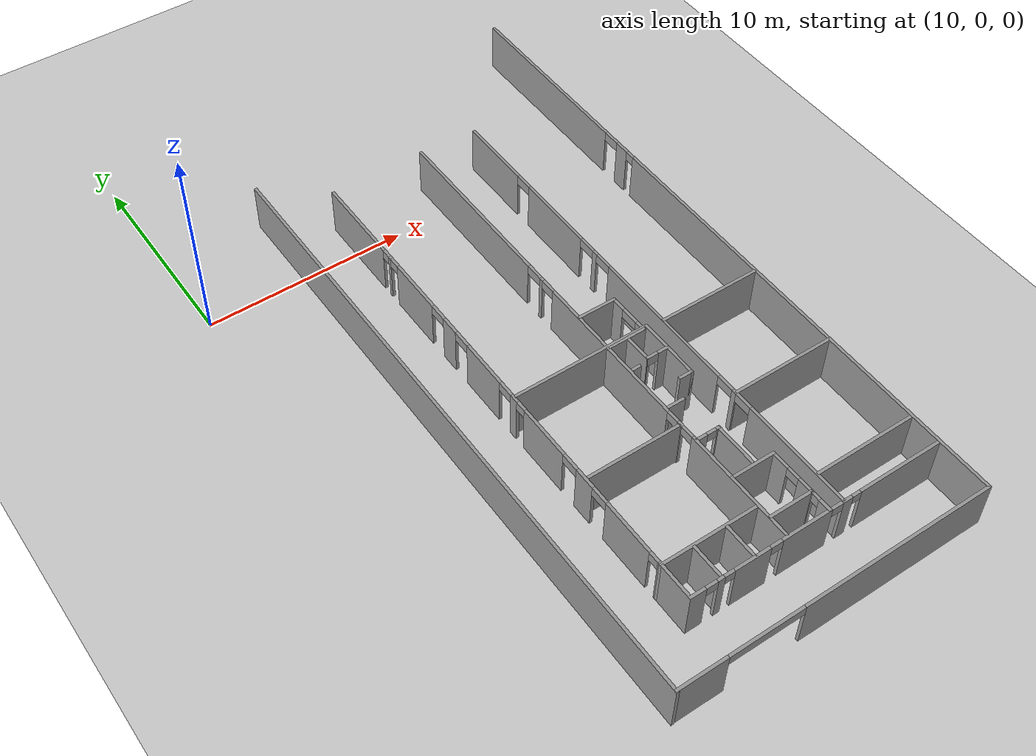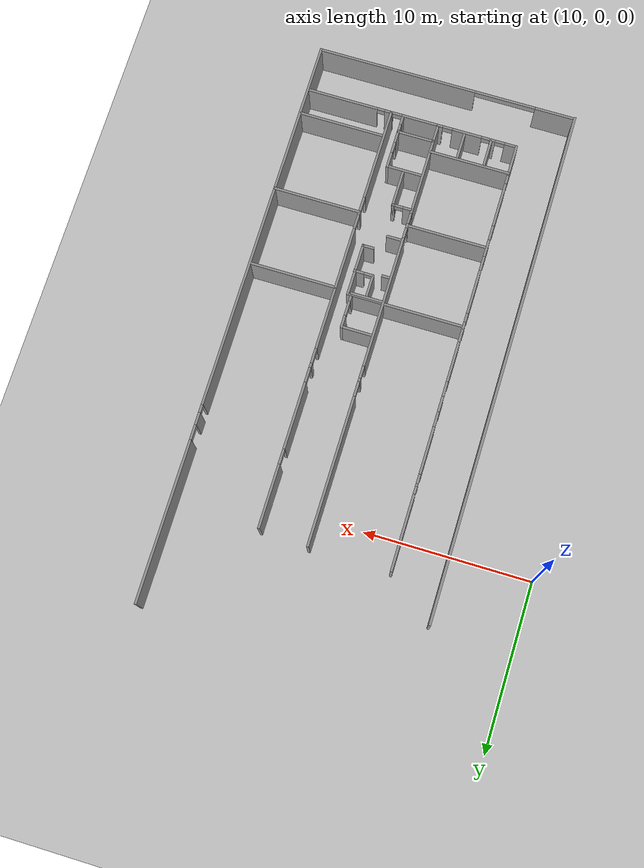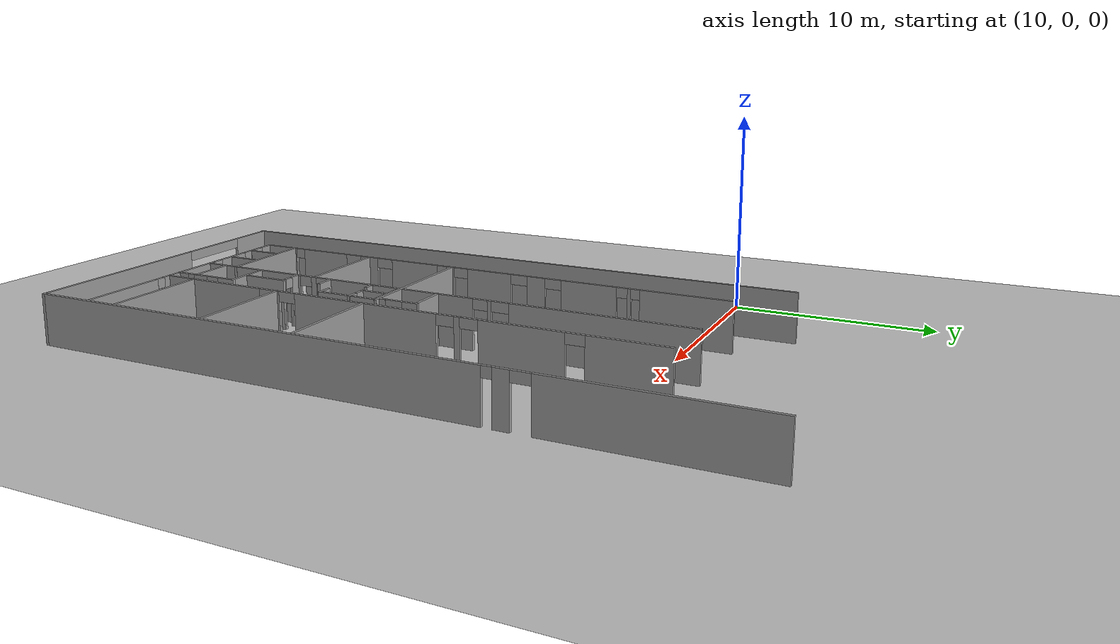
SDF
<sdf version="1.6">
 <world name="default">
  <model name="ground_plane">
   <static>1</static>
   <link name="link">
    <collision name="collision">
     <geometry><plane><normal>0 0 1</normal><size>100 100</size></plane></geometry>
     <surface><friction><ode><mu>100</mu><mu2>50</mu2></ode></friction></surface>
    </collision>
    <visual name="visual">
     <cast_shadows>0</cast_shadows>
     <geometry><plane><normal>0 0 1</normal><size>100 100</size></plane></geometry>
     <material>
      <script><uri>file://media/materials/scripts/gazebo.material</uri><name>Gazebo/Grey</name></script>
     </material>
    </visual>
   </link>
  </model>
  <model name="se1f1_fin.sdf">
   <pose>1.7543 -3.15003 0 0 -0 0</pose>
   <link name="Wall_11">
    <pose>29.0441 -6.57969 0 0 0 -1.5708</pose>
    <visual name="Wall_11_Visual_0">
     <pose>-12.659 0 1.25 0 -0 0</pose>
     <geometry><box><size>9.68204 0.15 2.5</size></box></geometry>
     <material>
      <script><uri>file://media/materials/scripts/gazebo.material</uri><name>Gazebo/Grey</name></script>
      <ambient>1 1 1 1</ambient>
     </material>
     <meta><layer>0</layer></meta>
    </visual>
    <collision name="Wall_11_Collision_0">
     <geometry><box><size>9.68204 0.15 2.5</size></box></geometry>
     <pose>-12.659 0 1.25 0 -0 0</pose>
    </collision>
    <visual name="Wall_11_Visual_1">
     <pose>-6.53827 0 1.25 0 -0 0</pose>
     <geometry><box><size>0.75937 0.15 2.5</size></box></geometry>
     <material>
      <script><uri>file://media/materials/scripts/gazebo.material</uri><name>Gazebo/Grey</name></script>
      <ambient>1 1 1 1</ambient>
     </material>
     <meta><layer>0</layer></meta>
    </visual>
    <collision name="Wall_11_Collision_1">
     <geometry><box><size>0.75937 0.15 2.5</size></box></geometry>
     <pose>-6.53827 0 1.25 0 -0 0</pose>
    </collision>
    <visual name="Wall_11_Visual_2">
     <pose>5.90951 0 1.25 0 -0 0</pose>
     <geometry><box><size>23.181 0.15 2.5</size></box></geometry>
     <material>
      <script><uri>file://media/materials/scripts/gazebo.material</uri><name>Gazebo/Grey</name></script>
      <ambient>1 1 1 1</ambient>
     </material>
     <meta><layer>0</layer></meta>
    </visual>
    <collision name="Wall_11_Collision_2">
     <geometry><box><size>23.181 0.15 2.5</size></box></geometry>
     <pose>5.90951 0 1.25 0 -0 0</pose>
    </collision>
    <visual name="Wall_11_Visual_3">
     <pose>-7.36796 0 2.25 0 -0 0</pose>
     <geometry><box><size>0.9 0.15 0.5</size></box></geometry>
     <material>
      <script><uri>file://media/materials/scripts/gazebo.material</uri><name>Gazebo/Grey</name></script>
      <ambient>1 1 1 1</ambient>
     </material>
     <meta><layer>0</layer></meta>
    </visual>
    <collision name="Wall_11_Collision_3">
     <geometry><box><size>0.9 0.15 0.5</size></box></geometry>
     <pose>-7.36796 0 2.25 0 -0 0</pose>
    </collision>
    <visual name="Wall_11_Visual_4">
     <pose>-5.91978 0 2.25 0 -0 0</pose>
     <geometry><box><size>0.477615 0.15 0.5</size></box></geometry>
     <material>
      <script><uri>file://media/materials/scripts/gazebo.material</uri><name>Gazebo/Grey</name></script>
      <ambient>1 1 1 1</ambient>
     </material>
     <meta><layer>0</layer></meta>
    </visual>
    <collision name="Wall_11_Collision_4">
     <geometry><box><size>0.477615 0.15 0.5</size></box></geometry>
     <pose>-5.91978 0 2.25 0 -0 0</pose>
    </collision>
   </link>
   <link name="Wall_12">
    <pose>21.1191 -24.0047 0 0 -0 3.14159</pose>
    <visual name="Wall_12_Visual_0">
     <pose>-3.11808 0 1.25 0 -0 0</pose>
     <geometry><box><size>9.76385 0.15 2.5</size></box></geometry>
     <material>
      <script><uri>file://media/materials/scripts/gazebo.material</uri><name>Gazebo/Grey</name></script>
      <ambient>1 1 1 1</ambient>
     </material>
     <meta><layer>0</layer></meta>
    </visual>
    <collision name="Wall_12_Collision_0">
     <geometry><box><size>9.76385 0.15 2.5</size></box></geometry>
     <pose>-3.11808 0 1.25 0 -0 0</pose>
    </collision>
    <visual name="Wall_12_Visual_1">
     <pose>6.74787 0 1.25 0 -0 0</pose>
     <geometry><box><size>2.50426 0.15 2.5</size></box></geometry>
     <material>
      <script><uri>file://media/materials/scripts/gazebo.material</uri><name>Gazebo/Grey</name></script>
      <ambient>1 1 1 1</ambient>
     </material>
     <meta><layer>0</layer></meta>
    </visual>
    <collision name="Wall_12_Collision_1">
     <geometry><box><size>2.50426 0.15 2.5</size></box></geometry>
     <pose>6.74787 0 1.25 0 -0 0</pose>
    </collision>
    <visual name="Wall_12_Visual_2">
     <pose>3.6298 0 2.25 0 -0 0</pose>
     <geometry><box><size>3.73189 0.15 0.5</size></box></geometry>
     <material>
      <script><uri>file://media/materials/scripts/gazebo.material</uri><name>Gazebo/Grey</name></script>
      <ambient>1 1 1 1</ambient>
     </material>
     <meta><layer>0</layer></meta>
    </visual>
    <collision name="Wall_12_Collision_2">
     <geometry><box><size>3.73189 0.15 0.5</size></box></geometry>
     <pose>3.6298 0 2.25 0 -0 0</pose>
    </collision>
   </link>
   <link name="Wall_173">
    <pose>16.0396 -8.0981 0 0 0 -1.5708</pose>
    <visual name="Wall_173_Visual_0">
     <pose>-10.9764 0 1.25 0 -0 0</pose>
     <geometry><box><size>4.54721 0.15 2.5</size></box></geometry>
     <material>
      <script><uri>file://media/materials/scripts/gazebo.material</uri><name>Gazebo/Grey</name></script>
      <ambient>1 1 1 1</ambient>
     </material>
     <meta><layer>0</layer></meta>
    </visual>
    <collision name="Wall_173_Collision_0">
     <geometry><box><size>4.54721 0.15 2.5</size></box></geometry>
     <pose>-10.9764 0 1.25 0 -0 0</pose>
    </collision>
    <visual name="Wall_173_Visual_1">
     <pose>-8.16228 0 1.25 0 -0 0</pose>
     <geometry><box><size>0.166019 0.15 2.5</size></box></geometry>
     <material>
      <script><uri>file://media/materials/scripts/gazebo.material</uri><name>Gazebo/Grey</name></script>
      <ambient>1 1 1 1</ambient>
     </material>
     <meta><layer>0</layer></meta>
    </visual>
    <collision name="Wall_173_Collision_1">
     <geometry><box><size>0.166019 0.15 2.5</size></box></geometry>
     <pose>-8.16228 0 1.25 0 -0 0</pose>
    </collision>
    <visual name="Wall_173_Visual_2">
     <pose>-6.08555 0 1.25 0 -0 0</pose>
     <geometry><box><size>2.87129 0.15 2.5</size></box></geometry>
     <material>
      <script><uri>file://media/materials/scripts/gazebo.material</uri><name>Gazebo/Grey</name></script>
      <ambient>1 1 1 1</ambient>
     </material>
     <meta><layer>0</layer></meta>
    </visual>
    <collision name="Wall_173_Collision_2">
     <geometry><box><size>2.87129 0.15 2.5</size></box></geometry>
     <pose>-6.08555 0 1.25 0 -0 0</pose>
    </collision>
    <visual name="Wall_173_Visual_3">
     <pose>-3.27468 0 1.25 0 -0 0</pose>
     <geometry><box><size>0.950449 0.15 2.5</size></box></geometry>
     <material>
      <script><uri>file://media/materials/scripts/gazebo.material</uri><name>Gazebo/Grey</name></script>
      <ambient>1 1 1 1</ambient>
     </material>
     <meta><layer>0</layer></meta>
    </visual>
    <collision name="Wall_173_Collision_3">
     <geometry><box><size>0.950449 0.15 2.5</size></box></geometry>
     <pose>-3.27468 0 1.25 0 -0 0</pose>
    </collision>
    <visual name="Wall_173_Visual_4">
     <pose>-0.664943 0 1.25 0 -0 0</pose>
     <geometry><box><size>2.46902 0.15 2.5</size></box></geometry>
     <material>
      <script><uri>file://media/materials/scripts/gazebo.material</uri><name>Gazebo/Grey</name></script>
      <ambient>1 1 1 1</ambient>
     </material>
     <meta><layer>0</layer></meta>
    </visual>
    <collision name="Wall_173_Collision_4">
     <geometry><box><size>2.46902 0.15 2.5</size></box></geometry>
     <pose>-0.664943 0 1.25 0 -0 0</pose>
    </collision>
    <visual name="Wall_173_Visual_5">
     <pose>1.59281 0 1.25 0 -0 0</pose>
     <geometry><box><size>0.44761 0.15 2.5</size></box></geometry>
     <material>
      <script><uri>file://media/materials/scripts/gazebo.material</uri><name>Gazebo/Grey</name></script>
      <ambient>1 1 1 1</ambient>
     </material>
     <meta><layer>0</layer></meta>
    </visual>
    <collision name="Wall_173_Collision_5">
     <geometry><box><size>0.44761 0.15 2.5</size></box></geometry>
     <pose>1.59281 0 1.25 0 -0 0</pose>
    </collision>
    <visual name="Wall_173_Visual_6">
     <pose>3.71982 0 1.25 0 -0 0</pose>
     <geometry><box><size>2.7305 0.15 2.5</size></box></geometry>
     <material>
      <script><uri>file://media/materials/scripts/gazebo.material</uri><name>Gazebo/Grey</name></script>
      <ambient>1 1 1 1</ambient>
     </material>
     <meta><layer>0</layer></meta>
    </visual>
    <collision name="Wall_173_Collision_6">
     <geometry><box><size>2.7305 0.15 2.5</size></box></geometry>
     <pose>3.71982 0 1.25 0 -0 0</pose>
    </collision>
    <visual name="Wall_173_Visual_7">
     <pose>6.52063 0 1.25 0 -0 0</pose>
     <geometry><box><size>1.07113 0.15 2.5</size></box></geometry>
     <material>
      <script><uri>file://media/materials/scripts/gazebo.material</uri><name>Gazebo/Grey</name></script>
      <ambient>1 1 1 1</ambient>
     </material>
     <meta><layer>0</layer></meta>
    </visual>
    <collision name="Wall_173_Collision_7">
     <geometry><box><size>1.07113 0.15 2.5</size></box></geometry>
     <pose>6.52063 0 1.25 0 -0 0</pose>
    </collision>
    <visual name="Wall_173_Visual_8">
     <pose>9.34156 0 1.25 0 -0 0</pose>
     <geometry><box><size>2.77073 0.15 2.5</size></box></geometry>
     <material>
      <script><uri>file://media/materials/scripts/gazebo.material</uri><name>Gazebo/Grey</name></script>
      <ambient>1 1 1 1</ambient>
     </material>
     <meta><layer>0</layer></meta>
    </visual>
    <collision name="Wall_173_Collision_8">
     <geometry><box><size>2.77073 0.15 2.5</size></box></geometry>
     <pose>9.34156 0 1.25 0 -0 0</pose>
    </collision>
    <visual name="Wall_173_Visual_9">
     <pose>12.2574 0 1.25 0 -0 0</pose>
     <geometry><box><size>1.98512 0.15 2.5</size></box></geometry>
     <material>
      <script><uri>file://media/materials/scripts/gazebo.material</uri><name>Gazebo/Grey</name></script>
      <ambient>1 1 1 1</ambient>
     </material>
     <meta><layer>0</layer></meta>
    </visual>
    <collision name="Wall_173_Collision_9">
     <geometry><box><size>1.98512 0.15 2.5</size></box></geometry>
     <pose>12.2574 0 1.25 0 -0 0</pose>
    </collision>
    <visual name="Wall_173_Visual_10">
     <pose>-8.47404 0 2.25 0 -0 0</pose>
     <geometry><box><size>0.457501 0.15 0.5</size></box></geometry>
     <material>
      <script><uri>file://media/materials/scripts/gazebo.material</uri><name>Gazebo/Grey</name></script>
      <ambient>1 1 1 1</ambient>
     </material>
     <meta><layer>0</layer></meta>
    </visual>
    <collision name="Wall_173_Collision_10">
     <geometry><box><size>0.457501 0.15 0.5</size></box></geometry>
     <pose>-8.47404 0 2.25 0 -0 0</pose>
    </collision>
    <visual name="Wall_173_Visual_11">
     <pose>-7.80023 0 2.25 0 -0 0</pose>
     <geometry><box><size>0.558069 0.15 0.5</size></box></geometry>
     <material>
      <script><uri>file://media/materials/scripts/gazebo.material</uri><name>Gazebo/Grey</name></script>
      <ambient>1 1 1 1</ambient>
     </material>
     <meta><layer>0</layer></meta>
    </visual>
    <collision name="Wall_173_Collision_11">
     <geometry><box><size>0.558069 0.15 0.5</size></box></geometry>
     <pose>-7.80023 0 2.25 0 -0 0</pose>
    </collision>
    <visual name="Wall_173_Visual_12">
     <pose>-4.1999 0 2.25 0 -0 0</pose>
     <geometry><box><size>0.9 0.15 0.5</size></box></geometry>
     <material>
      <script><uri>file://media/materials/scripts/gazebo.material</uri><name>Gazebo/Grey</name></script>
      <ambient>1 1 1 1</ambient>
     </material>
     <meta><layer>0</layer></meta>
    </visual>
    <collision name="Wall_173_Collision_12">
     <geometry><box><size>0.9 0.15 0.5</size></box></geometry>
     <pose>-4.1999 0 2.25 0 -0 0</pose>
    </collision>
    <visual name="Wall_173_Visual_13">
     <pose>-2.34945 0 2.25 0 -0 0</pose>
     <geometry><box><size>0.9 0.15 0.5</size></box></geometry>
     <material>
      <script><uri>file://media/materials/scripts/gazebo.material</uri><name>Gazebo/Grey</name></script>
      <ambient>1 1 1 1</ambient>
     </material>
     <meta><layer>0</layer></meta>
    </visual>
    <collision name="Wall_173_Collision_13">
     <geometry><box><size>0.9 0.15 0.5</size></box></geometry>
     <pose>-2.34945 0 2.25 0 -0 0</pose>
    </collision>
    <visual name="Wall_173_Visual_14">
     <pose>0.969285 0 2.25 0 -0 0</pose>
     <geometry><box><size>0.799432 0.15 0.5</size></box></geometry>
     <material>
      <script><uri>file://media/materials/scripts/gazebo.material</uri><name>Gazebo/Grey</name></script>
      <ambient>1 1 1 1</ambient>
     </material>
     <meta><layer>0</layer></meta>
    </visual>
    <collision name="Wall_173_Collision_14">
     <geometry><box><size>0.799432 0.15 0.5</size></box></geometry>
     <pose>0.969285 0 2.25 0 -0 0</pose>
    </collision>
    <visual name="Wall_173_Visual_15">
     <pose>2.08559 0 2.25 0 -0 0</pose>
     <geometry><box><size>0.537956 0.15 0.5</size></box></geometry>
     <material>
      <script><uri>file://media/materials/scripts/gazebo.material</uri><name>Gazebo/Grey</name></script>
      <ambient>1 1 1 1</ambient>
     </material>
     <meta><layer>0</layer></meta>
    </visual>
    <collision name="Wall_173_Collision_15">
     <geometry><box><size>0.537956 0.15 0.5</size></box></geometry>
     <pose>2.08559 0 2.25 0 -0 0</pose>
    </collision>
    <visual name="Wall_173_Visual_16">
     <pose>5.53507 0 2.25 0 -0 0</pose>
     <geometry><box><size>0.9 0.15 0.5</size></box></geometry>
     <material>
      <script><uri>file://media/materials/scripts/gazebo.material</uri><name>Gazebo/Grey</name></script>
      <ambient>1 1 1 1</ambient>
     </material>
     <meta><layer>0</layer></meta>
    </visual>
    <collision name="Wall_173_Collision_16">
     <geometry><box><size>0.9 0.15 0.5</size></box></geometry>
     <pose>5.53507 0 2.25 0 -0 0</pose>
    </collision>
    <visual name="Wall_173_Visual_17">
     <pose>7.5062 0 2.25 0 -0 0</pose>
     <geometry><box><size>0.9 0.15 0.5</size></box></geometry>
     <material>
      <script><uri>file://media/materials/scripts/gazebo.material</uri><name>Gazebo/Grey</name></script>
      <ambient>1 1 1 1</ambient>
     </material>
     <meta><layer>0</layer></meta>
    </visual>
    <collision name="Wall_173_Collision_17">
     <geometry><box><size>0.9 0.15 0.5</size></box></geometry>
     <pose>7.5062 0 2.25 0 -0 0</pose>
    </collision>
    <visual name="Wall_173_Visual_18">
     <pose>10.9959 0 2.25 0 -0 0</pose>
     <geometry><box><size>0.537956 0.15 0.5</size></box></geometry>
     <material>
      <script><uri>file://media/materials/scripts/gazebo.material</uri><name>Gazebo/Grey</name></script>
      <ambient>1 1 1 1</ambient>
     </material>
     <meta><layer>0</layer></meta>
    </visual>
    <collision name="Wall_173_Collision_18">
     <geometry><box><size>0.537956 0.15 0.5</size></box></geometry>
     <pose>10.9959 0 2.25 0 -0 0</pose>
    </collision>
   </link>
   <link name="Wall_175">
    <pose>22.4646 -21.2731 0 0 -0 0</pose>
    <visual name="Wall_175_Visual_0">
     <pose>-6.09449 0 1.25 0 -0 0</pose>
     <geometry><box><size>0.811026 0.15 2.5</size></box></geometry>
     <material>
      <script><uri>file://media/materials/scripts/gazebo.material</uri><name>Gazebo/Grey</name></script>
      <ambient>1 1 1 1</ambient>
     </material>
     <meta><layer>0</layer></meta>
    </visual>
    <collision name="Wall_175_Collision_0">
     <geometry><box><size>0.811026 0.15 2.5</size></box></geometry>
     <pose>-6.09449 0 1.25 0 -0 0</pose>
    </collision>
    <visual name="Wall_175_Visual_1">
     <pose>-4.9423 0 1.25 0 -0 0</pose>
     <geometry><box><size>0.336984 0.15 2.5</size></box></geometry>
     <material>
      <script><uri>file://media/materials/scripts/gazebo.material</uri><name>Gazebo/Grey</name></script>
      <ambient>1 1 1 1</ambient>
     </material>
     <meta><layer>0</layer></meta>
    </visual>
    <collision name="Wall_175_Collision_1">
     <geometry><box><size>0.336984 0.15 2.5</size></box></geometry>
     <pose>-4.9423 0 1.25 0 -0 0</pose>
    </collision>
    <visual name="Wall_175_Visual_2">
     <pose>-3.36841 0 1.25 0 -0 0</pose>
     <geometry><box><size>1.81533 0.15 2.5</size></box></geometry>
     <material>
      <script><uri>file://media/materials/scripts/gazebo.material</uri><name>Gazebo/Grey</name></script>
      <ambient>1 1 1 1</ambient>
     </material>
     <meta><layer>0</layer></meta>
    </visual>
    <collision name="Wall_175_Collision_2">
     <geometry><box><size>1.81533 0.15 2.5</size></box></geometry>
     <pose>-3.36841 0 1.25 0 -0 0</pose>
    </collision>
    <visual name="Wall_175_Visual_3">
     <pose>-0.592738 0 1.25 0 -0 0</pose>
     <geometry><box><size>2.53942 0.15 2.5</size></box></geometry>
     <material>
      <script><uri>file://media/materials/scripts/gazebo.material</uri><name>Gazebo/Grey</name></script>
      <ambient>1 1 1 1</ambient>
     </material>
     <meta><layer>0</layer></meta>
    </visual>
    <collision name="Wall_175_Collision_3">
     <geometry><box><size>2.53942 0.15 2.5</size></box></geometry>
     <pose>-0.592738 0 1.25 0 -0 0</pose>
    </collision>
    <visual name="Wall_175_Visual_4">
     <pose>1.5041 0 1.25 0 -0 0</pose>
     <geometry><box><size>0.497893 0.15 2.5</size></box></geometry>
     <material>
      <script><uri>file://media/materials/scripts/gazebo.material</uri><name>Gazebo/Grey</name></script>
      <ambient>1 1 1 1</ambient>
     </material>
     <meta><layer>0</layer></meta>
    </visual>
    <collision name="Wall_175_Collision_4">
     <geometry><box><size>0.497893 0.15 2.5</size></box></geometry>
     <pose>1.5041 0 1.25 0 -0 0</pose>
    </collision>
    <visual name="Wall_175_Visual_5">
     <pose>4.35527 0 1.25 0 -0 0</pose>
     <geometry><box><size>4.28945 0.15 2.5</size></box></geometry>
     <material>
      <script><uri>file://media/materials/scripts/gazebo.material</uri><name>Gazebo/Grey</name></script>
      <ambient>1 1 1 1</ambient>
     </material>
     <meta><layer>0</layer></meta>
    </visual>
    <collision name="Wall_175_Collision_5">
     <geometry><box><size>4.28945 0.15 2.5</size></box></geometry>
     <pose>4.35527 0 1.25 0 -0 0</pose>
    </collision>
    <visual name="Wall_175_Visual_6">
     <pose>-5.39988 0 2.25 0 -0 0</pose>
     <geometry><box><size>0.578183 0.15 0.5</size></box></geometry>
     <material>
      <script><uri>file://media/materials/scripts/gazebo.material</uri><name>Gazebo/Grey</name></script>
      <ambient>1 1 1 1</ambient>
     </material>
     <meta><layer>0</layer></meta>
    </visual>
    <collision name="Wall_175_Collision_6">
     <geometry><box><size>0.578183 0.15 0.5</size></box></geometry>
     <pose>-5.39988 0 2.25 0 -0 0</pose>
    </collision>
    <visual name="Wall_175_Visual_7">
     <pose>-4.52494 0 2.25 0 -0 0</pose>
     <geometry><box><size>0.497729 0.15 0.5</size></box></geometry>
     <material>
      <script><uri>file://media/materials/scripts/gazebo.material</uri><name>Gazebo/Grey</name></script>
      <ambient>1 1 1 1</ambient>
     </material>
     <meta><layer>0</layer></meta>
    </visual>
    <collision name="Wall_175_Collision_7">
     <geometry><box><size>0.497729 0.15 0.5</size></box></geometry>
     <pose>-4.52494 0 2.25 0 -0 0</pose>
    </collision>
    <visual name="Wall_175_Visual_8">
     <pose>-2.1616 0 2.25 0 -0 0</pose>
     <geometry><box><size>0.598296 0.15 0.5</size></box></geometry>
     <material>
      <script><uri>file://media/materials/scripts/gazebo.material</uri><name>Gazebo/Grey</name></script>
      <ambient>1 1 1 1</ambient>
     </material>
     <meta><layer>0</layer></meta>
    </visual>
    <collision name="Wall_175_Collision_8">
     <geometry><box><size>0.598296 0.15 0.5</size></box></geometry>
     <pose>-2.1616 0 2.25 0 -0 0</pose>
    </collision>
    <visual name="Wall_175_Visual_9">
     <pose>0.966063 0 2.25 0 -0 0</pose>
     <geometry><box><size>0.578183 0.15 0.5</size></box></geometry>
     <material>
      <script><uri>file://media/materials/scripts/gazebo.material</uri><name>Gazebo/Grey</name></script>
      <ambient>1 1 1 1</ambient>
     </material>
     <meta><layer>0</layer></meta>
    </visual>
    <collision name="Wall_175_Collision_9">
     <geometry><box><size>0.578183 0.15 0.5</size></box></geometry>
     <pose>0.966063 0 2.25 0 -0 0</pose>
    </collision>
    <visual name="Wall_175_Visual_10">
     <pose>1.9818 0 2.25 0 -0 0</pose>
     <geometry><box><size>0.457501 0.15 0.5</size></box></geometry>
     <material>
      <script><uri>file://media/materials/scripts/gazebo.material</uri><name>Gazebo/Grey</name></script>
      <ambient>1 1 1 1</ambient>
     </material>
     <meta><layer>0</layer></meta>
    </visual>
    <collision name="Wall_175_Collision_10">
     <geometry><box><size>0.457501 0.15 0.5</size></box></geometry>
     <pose>1.9818 0 2.25 0 -0 0</pose>
    </collision>
   </link>
   <link name="Wall_177">
    <pose>20.8885 -8.08961 0 0 0 -1.5708</pose>
    <visual name="Wall_177_Visual_0">
     <pose>-8.74457 0 1.25 0 -0 0</pose>
     <geometry><box><size>9.01086 0.15 2.5</size></box></geometry>
     <material>
      <script><uri>file://media/materials/scripts/gazebo.material</uri><name>Gazebo/Grey</name></script>
      <ambient>1 1 1 1</ambient>
     </material>
     <meta><layer>0</layer></meta>
    </visual>
    <collision name="Wall_177_Collision_0">
     <geometry><box><size>9.01086 0.15 2.5</size></box></geometry>
     <pose>-8.74457 0 1.25 0 -0 0</pose>
    </collision>
    <visual name="Wall_177_Visual_1">
     <pose>-3.23602 0 1.25 0 -0 0</pose>
     <geometry><box><size>0.206247 0.15 2.5</size></box></geometry>
     <material>
      <script><uri>file://media/materials/scripts/gazebo.material</uri><name>Gazebo/Grey</name></script>
      <ambient>1 1 1 1</ambient>
     </material>
     <meta><layer>0</layer></meta>
    </visual>
    <collision name="Wall_177_Collision_1">
     <geometry><box><size>0.206247 0.15 2.5</size></box></geometry>
     <pose>-3.23602 0 1.25 0 -0 0</pose>
    </collision>
    <visual name="Wall_177_Visual_2">
     <pose>1.68678 0 1.25 0 -0 0</pose>
     <geometry><box><size>8.12094 0.15 2.5</size></box></geometry>
     <material>
      <script><uri>file://media/materials/scripts/gazebo.material</uri><name>Gazebo/Grey</name></script>
      <ambient>1 1 1 1</ambient>
     </material>
     <meta><layer>0</layer></meta>
    </visual>
    <collision name="Wall_177_Collision_2">
     <geometry><box><size>8.12094 0.15 2.5</size></box></geometry>
     <pose>1.68678 0 1.25 0 -0 0</pose>
    </collision>
    <visual name="Wall_177_Visual_3">
     <pose>6.53415 0 1.25 0 -0 0</pose>
     <geometry><box><size>0.296757 0.15 2.5</size></box></geometry>
     <material>
      <script><uri>file://media/materials/scripts/gazebo.material</uri><name>Gazebo/Grey</name></script>
      <ambient>1 1 1 1</ambient>
     </material>
     <meta><layer>0</layer></meta>
    </visual>
    <collision name="Wall_177_Collision_3">
     <geometry><box><size>0.296757 0.15 2.5</size></box></geometry>
     <pose>6.53415 0 1.25 0 -0 0</pose>
    </collision>
    <visual name="Wall_177_Visual_4">
     <pose>10.2956 0 1.25 0 -0 0</pose>
     <geometry><box><size>5.90883 0.15 2.5</size></box></geometry>
     <material>
      <script><uri>file://media/materials/scripts/gazebo.material</uri><name>Gazebo/Grey</name></script>
      <ambient>1 1 1 1</ambient>
     </material>
     <meta><layer>0</layer></meta>
    </visual>
    <collision name="Wall_177_Collision_4">
     <geometry><box><size>5.90883 0.15 2.5</size></box></geometry>
     <pose>10.2956 0 1.25 0 -0 0</pose>
    </collision>
    <visual name="Wall_177_Visual_5">
     <pose>-3.78914 0 2.25 0 -0 0</pose>
     <geometry><box><size>0.9 0.15 0.5</size></box></geometry>
     <material>
      <script><uri>file://media/materials/scripts/gazebo.material</uri><name>Gazebo/Grey</name></script>
      <ambient>1 1 1 1</ambient>
     </material>
     <meta><layer>0</layer></meta>
    </visual>
    <collision name="Wall_177_Collision_5">
     <geometry><box><size>0.9 0.15 0.5</size></box></geometry>
     <pose>-3.78914 0 2.25 0 -0 0</pose>
    </collision>
    <visual name="Wall_177_Visual_6">
     <pose>-2.75329 0 2.25 0 -0 0</pose>
     <geometry><box><size>0.759205 0.15 0.5</size></box></geometry>
     <material>
      <script><uri>file://media/materials/scripts/gazebo.material</uri><name>Gazebo/Grey</name></script>
      <ambient>1 1 1 1</ambient>
     </material>
     <meta><layer>0</layer></meta>
    </visual>
    <collision name="Wall_177_Collision_6">
     <geometry><box><size>0.759205 0.15 0.5</size></box></geometry>
     <pose>-2.75329 0 2.25 0 -0 0</pose>
    </collision>
    <visual name="Wall_177_Visual_7">
     <pose>6.06651 0 2.25 0 -0 0</pose>
     <geometry><box><size>0.638524 0.15 0.5</size></box></geometry>
     <material>
      <script><uri>file://media/materials/scripts/gazebo.material</uri><name>Gazebo/Grey</name></script>
      <ambient>1 1 1 1</ambient>
     </material>
     <meta><layer>0</layer></meta>
    </visual>
    <collision name="Wall_177_Collision_7">
     <geometry><box><size>0.638524 0.15 0.5</size></box></geometry>
     <pose>6.06651 0 2.25 0 -0 0</pose>
    </collision>
    <visual name="Wall_177_Visual_8">
     <pose>7.01185 0 2.25 0 -0 0</pose>
     <geometry><box><size>0.658637 0.15 0.5</size></box></geometry>
     <material>
      <script><uri>file://media/materials/scripts/gazebo.material</uri><name>Gazebo/Grey</name></script>
      <ambient>1 1 1 1</ambient>
     </material>
     <meta><layer>0</layer></meta>
    </visual>
    <collision name="Wall_177_Collision_8">
     <geometry><box><size>0.658637 0.15 0.5</size></box></geometry>
     <pose>7.01185 0 2.25 0 -0 0</pose>
    </collision>
   </link>
   <link name="Wall_179">
    <collision name="Wall_179_Collision">
     <geometry><box><size>5 0.15 2.5</size></box></geometry>
     <pose>0 0 1.25 0 -0 0</pose>
    </collision>
    <visual name="Wall_179_Visual">
     <pose>0 0 1.25 0 -0 0</pose>
     <geometry><box><size>5 0.15 2.5</size></box></geometry>
     <material>
      <script><uri>file://media/materials/scripts/gazebo.material</uri><name>Gazebo/Grey</name></script>
      <ambient>1 1 1 1</ambient>
     </material>
     <meta><layer>0</layer></meta>
    </visual>
    <pose>18.4643 -19.5116 0 0 -0 0</pose>
   </link>
   <link name="Wall_181">
    <pose>23.8132 -8.15688 0 0 0 -1.5708</pose>
    <visual name="Wall_181_Visual_0">
     <pose>-11.2098 0 1.25 0 -0 0</pose>
     <geometry><box><size>3.83042 0.15 2.5</size></box></geometry>
     <material>
      <script><uri>file://media/materials/scripts/gazebo.material</uri><name>Gazebo/Grey</name></script>
      <ambient>1 1 1 1</ambient>
     </material>
     <meta><layer>0</layer></meta>
    </visual>
    <collision name="Wall_181_Collision_0">
     <geometry><box><size>3.83042 0.15 2.5</size></box></geometry>
     <pose>-11.2098 0 1.25 0 -0 0</pose>
    </collision>
    <visual name="Wall_181_Visual_1">
     <pose>-6.35049 0 1.25 0 -0 0</pose>
     <geometry><box><size>4.08817 0.15 2.5</size></box></geometry>
     <material>
      <script><uri>file://media/materials/scripts/gazebo.material</uri><name>Gazebo/Grey</name></script>
      <ambient>1 1 1 1</ambient>
     </material>
     <meta><layer>0</layer></meta>
    </visual>
    <collision name="Wall_181_Collision_1">
     <geometry><box><size>4.08817 0.15 2.5</size></box></geometry>
     <pose>-6.35049 0 1.25 0 -0 0</pose>
    </collision>
    <visual name="Wall_181_Visual_2">
     <pose>-3.26306 0 1.25 0 -0 0</pose>
     <geometry><box><size>0.286701 0.15 2.5</size></box></geometry>
     <material>
      <script><uri>file://media/materials/scripts/gazebo.material</uri><name>Gazebo/Grey</name></script>
      <ambient>1 1 1 1</ambient>
     </material>
     <meta><layer>0</layer></meta>
    </visual>
    <collision name="Wall_181_Collision_2">
     <geometry><box><size>0.286701 0.15 2.5</size></box></geometry>
     <pose>-3.26306 0 1.25 0 -0 0</pose>
    </collision>
    <visual name="Wall_181_Visual_3">
     <pose>1.59437 0 1.25 0 -0 0</pose>
     <geometry><box><size>7.62815 0.15 2.5</size></box></geometry>
     <material>
      <script><uri>file://media/materials/scripts/gazebo.material</uri><name>Gazebo/Grey</name></script>
      <ambient>1 1 1 1</ambient>
     </material>
     <meta><layer>0</layer></meta>
    </visual>
    <collision name="Wall_181_Collision_3">
     <geometry><box><size>7.62815 0.15 2.5</size></box></geometry>
     <pose>1.59437 0 1.25 0 -0 0</pose>
    </collision>
    <visual name="Wall_181_Visual_4">
     <pose>6.43168 0 1.25 0 -0 0</pose>
     <geometry><box><size>0.246473 0.15 2.5</size></box></geometry>
     <material>
      <script><uri>file://media/materials/scripts/gazebo.material</uri><name>Gazebo/Grey</name></script>
      <ambient>1 1 1 1</ambient>
     </material>
     <meta><layer>0</layer></meta>
    </visual>
    <collision name="Wall_181_Collision_4">
     <geometry><box><size>0.246473 0.15 2.5</size></box></geometry>
     <pose>6.43168 0 1.25 0 -0 0</pose>
    </collision>
    <visual name="Wall_181_Visual_5">
     <pose>10.29 0 1.25 0 -0 0</pose>
     <geometry><box><size>5.67008 0.15 2.5</size></box></geometry>
     <material>
      <script><uri>file://media/materials/scripts/gazebo.material</uri><name>Gazebo/Grey</name></script>
      <ambient>1 1 1 1</ambient>
     </material>
     <meta><layer>0</layer></meta>
    </visual>
    <collision name="Wall_181_Collision_5">
     <geometry><box><size>5.67008 0.15 2.5</size></box></geometry>
     <pose>10.29 0 1.25 0 -0 0</pose>
    </collision>
    <visual name="Wall_181_Visual_6">
     <pose>-8.84458 0 2.25 0 -0 0</pose>
     <geometry><box><size>0.9 0.15 0.5</size></box></geometry>
     <material>
      <script><uri>file://media/materials/scripts/gazebo.material</uri><name>Gazebo/Grey</name></script>
      <ambient>1 1 1 1</ambient>
     </material>
     <meta><layer>0</layer></meta>
    </visual>
    <collision name="Wall_181_Collision_6">
     <geometry><box><size>0.9 0.15 0.5</size></box></geometry>
     <pose>-8.84458 0 2.25 0 -0 0</pose>
    </collision>
    <visual name="Wall_181_Visual_7">
     <pose>-3.85641 0 2.25 0 -0 0</pose>
     <geometry><box><size>0.9 0.15 0.5</size></box></geometry>
     <material>
      <script><uri>file://media/materials/scripts/gazebo.material</uri><name>Gazebo/Grey</name></script>
      <ambient>1 1 1 1</ambient>
     </material>
     <meta><layer>0</layer></meta>
    </visual>
    <collision name="Wall_181_Collision_7">
     <geometry><box><size>0.9 0.15 0.5</size></box></geometry>
     <pose>-3.85641 0 2.25 0 -0 0</pose>
    </collision>
    <visual name="Wall_181_Visual_8">
     <pose>-2.66971 0 2.25 0 -0 0</pose>
     <geometry><box><size>0.9 0.15 0.5</size></box></geometry>
     <material>
      <script><uri>file://media/materials/scripts/gazebo.material</uri><name>Gazebo/Grey</name></script>
      <ambient>1 1 1 1</ambient>
     </material>
     <meta><layer>0</layer></meta>
    </visual>
    <collision name="Wall_181_Collision_8">
     <geometry><box><size>0.9 0.15 0.5</size></box></geometry>
     <pose>-2.66971 0 2.25 0 -0 0</pose>
    </collision>
    <visual name="Wall_181_Visual_9">
     <pose>5.85845 0 2.25 0 -0 0</pose>
     <geometry><box><size>0.9 0.15 0.5</size></box></geometry>
     <material>
      <script><uri>file://media/materials/scripts/gazebo.material</uri><name>Gazebo/Grey</name></script>
      <ambient>1 1 1 1</ambient>
     </material>
     <meta><layer>0</layer></meta>
    </visual>
    <collision name="Wall_181_Collision_9">
     <geometry><box><size>0.9 0.15 0.5</size></box></geometry>
     <pose>5.85845 0 2.25 0 -0 0</pose>
    </collision>
    <visual name="Wall_181_Visual_10">
     <pose>7.00492 0 2.25 0 -0 0</pose>
     <geometry><box><size>0.9 0.15 0.5</size></box></geometry>
     <material>
      <script><uri>file://media/materials/scripts/gazebo.material</uri><name>Gazebo/Grey</name></script>
      <ambient>1 1 1 1</ambient>
     </material>
     <meta><layer>0</layer></meta>
    </visual>
    <collision name="Wall_181_Collision_10">
     <geometry><box><size>0.9 0.15 0.5</size></box></geometry>
     <pose>7.00492 0 2.25 0 -0 0</pose>
    </collision>
   </link>
   <link name="Wall_200">
    <collision name="Wall_200_Collision">
     <geometry><box><size>2 0.15 2.5</size></box></geometry>
     <pose>0 0 1.25 0 -0 0</pose>
    </collision>
    <visual name="Wall_200_Visual">
     <pose>0 0 1.25 0 -0 0</pose>
     <geometry><box><size>2 0.15 2.5</size></box></geometry>
     <material>
      <script><uri>file://media/materials/scripts/gazebo.material</uri><name>Gazebo/Grey</name></script>
      <ambient>1 1 1 1</ambient>
     </material>
     <meta><layer>0</layer></meta>
    </visual>
    <pose>21.8677 -7.60391 0 0 -0 0</pose>
   </link>
   <link name="Wall_201">
    <pose>22.7927 -8.65391 0 0 0 -1.5708</pose>
    <visual name="Wall_201_Visual_0">
     <pose>-0.731615 0 1.25 0 -0 0</pose>
     <geometry><box><size>0.786771 0.15 2.5</size></box></geometry>
     <material>
      <script><uri>file://media/materials/scripts/gazebo.material</uri><name>Gazebo/Grey</name></script>
      <ambient>1 1 1 1</ambient>
     </material>
     <meta><layer>0</layer></meta>
    </visual>
    <collision name="Wall_201_Collision_0">
     <geometry><box><size>0.786771 0.15 2.5</size></box></geometry>
     <pose>-0.731615 0 1.25 0 -0 0</pose>
    </collision>
    <visual name="Wall_201_Visual_1">
     <pose>0.843385 0 1.25 0 -0 0</pose>
     <geometry><box><size>0.563229 0.15 2.5</size></box></geometry>
     <material>
      <script><uri>file://media/materials/scripts/gazebo.material</uri><name>Gazebo/Grey</name></script>
      <ambient>1 1 1 1</ambient>
     </material>
     <meta><layer>0</layer></meta>
    </visual>
    <collision name="Wall_201_Collision_1">
     <geometry><box><size>0.563229 0.15 2.5</size></box></geometry>
     <pose>0.843385 0 1.25 0 -0 0</pose>
    </collision>
    <visual name="Wall_201_Visual_2">
     <pose>0.111771 0 2.25 0 -0 0</pose>
     <geometry><box><size>0.9 0.15 0.5</size></box></geometry>
     <material>
      <script><uri>file://media/materials/scripts/gazebo.material</uri><name>Gazebo/Grey</name></script>
      <ambient>1 1 1 1</ambient>
     </material>
     <meta><layer>0</layer></meta>
    </visual>
    <collision name="Wall_201_Collision_2">
     <geometry><box><size>0.9 0.15 0.5</size></box></geometry>
     <pose>0.111771 0 2.25 0 -0 0</pose>
    </collision>
   </link>
   <link name="Wall_202">
    <collision name="Wall_202_Collision">
     <geometry><box><size>2 0.15 2.5</size></box></geometry>
     <pose>0 0 1.25 0 -0 0</pose>
    </collision>
    <visual name="Wall_202_Visual">
     <pose>0 0 1.25 0 -0 0</pose>
     <geometry><box><size>2 0.15 2.5</size></box></geometry>
     <material>
      <script><uri>file://media/materials/scripts/gazebo.material</uri><name>Gazebo/Grey</name></script>
      <ambient>1 1 1 1</ambient>
     </material>
     <meta><layer>0</layer></meta>
    </visual>
    <pose>21.8677 -9.70391 0 0 -0 3.14159</pose>
   </link>
   <link name="Wall_204">
    <collision name="Wall_204_Collision">
     <geometry><box><size>1 0.15 2.5</size></box></geometry>
     <pose>0 0 1.25 0 -0 0</pose>
    </collision>
    <visual name="Wall_204_Visual">
     <pose>0 0 1.25 0 -0 0</pose>
     <geometry><box><size>1 0.15 2.5</size></box></geometry>
     <material>
      <script><uri>file://media/materials/scripts/gazebo.material</uri><name>Gazebo/Grey</name></script>
      <ambient>1 1 1 1</ambient>
     </material>
     <meta><layer>0</layer></meta>
    </visual>
    <pose>21.3677 -13.6608 0 0 -0 0</pose>
   </link>
   <link name="Wall_206">
    <collision name="Wall_206_Collision">
     <geometry><box><size>0.75 0.15 2.5</size></box></geometry>
     <pose>0 0 1.25 0 -0 0</pose>
    </collision>
    <visual name="Wall_206_Visual">
     <pose>0 0 1.25 0 -0 0</pose>
     <geometry><box><size>0.75 0.15 2.5</size></box></geometry>
     <material>
      <script><uri>file://media/materials/scripts/gazebo.material</uri><name>Gazebo/Grey</name></script>
      <ambient>1 1 1 1</ambient>
     </material>
     <meta><layer>0</layer></meta>
    </visual>
    <pose>22.711 -12.7125 0 0 -0 0</pose>
   </link>
   <link name="Wall_207">
    <collision name="Wall_207_Collision">
     <geometry><box><size>3.25 0.15 2.5</size></box></geometry>
     <pose>0 0 1.25 0 -0 0</pose>
    </collision>
    <visual name="Wall_207_Visual">
     <pose>0 0 1.25 0 -0 0</pose>
     <geometry><box><size>3.25 0.15 2.5</size></box></geometry>
     <material>
      <script><uri>file://media/materials/scripts/gazebo.material</uri><name>Gazebo/Grey</name></script>
      <ambient>1 1 1 1</ambient>
     </material>
     <meta><layer>0</layer></meta>
    </visual>
    <pose>23.011 -11.1625 0 0 -0 1.5708</pose>
   </link>
   <link name="Wall_208">
    <collision name="Wall_208_Collision">
     <geometry><box><size>7 0.15 2.5</size></box></geometry>
     <pose>0 0 1.25 0 -0 0</pose>
    </collision>
    <visual name="Wall_208_Visual">
     <pose>0 0 1.25 0 -0 0</pose>
     <geometry><box><size>7 0.15 2.5</size></box></geometry>
     <material>
      <script><uri>file://media/materials/scripts/gazebo.material</uri><name>Gazebo/Grey</name></script>
      <ambient>1 1 1 1</ambient>
     </material>
     <meta><layer>0</layer></meta>
    </visual>
    <pose>19.586 -9.61248 0 0 -0 3.14159</pose>
   </link>
   <link name="Wall_210">
    <collision name="Wall_210_Collision">
     <geometry><box><size>1.5 0.15 2.5</size></box></geometry>
     <pose>0 0 1.25 0 -0 0</pose>
    </collision>
    <visual name="Wall_210_Visual">
     <pose>0 0 1.25 0 -0 0</pose>
     <geometry><box><size>1.5 0.15 2.5</size></box></geometry>
     <material>
      <script><uri>file://media/materials/scripts/gazebo.material</uri><name>Gazebo/Grey</name></script>
      <ambient>1 1 1 1</ambient>
     </material>
     <meta><layer>0</layer></meta>
    </visual>
    <pose>21.9272 -10.4067 0 0 0 -1.5708</pose>
   </link>
   <link name="Wall_211">
    <pose>22.4772 -11.0817 0 0 -0 0</pose>
    <visual name="Wall_211_Visual_0">
     <pose>-0.603859 0 1.25 0 -0 0</pose>
     <geometry><box><size>0.042282 0.15 2.5</size></box></geometry>
     <material>
      <script><uri>file://media/materials/scripts/gazebo.material</uri><name>Gazebo/Grey</name></script>
      <ambient>1 1 1 1</ambient>
     </material>
     <meta><layer>0</layer></meta>
    </visual>
    <collision name="Wall_211_Collision_0">
     <geometry><box><size>0.042282 0.15 2.5</size></box></geometry>
     <pose>-0.603859 0 1.25 0 -0 0</pose>
    </collision>
    <visual name="Wall_211_Visual_1">
     <pose>0.310232 0 1.25 0 -0 0</pose>
     <geometry><box><size>0.629535 0.15 2.5</size></box></geometry>
     <material>
      <script><uri>file://media/materials/scripts/gazebo.material</uri><name>Gazebo/Grey</name></script>
      <ambient>1 1 1 1</ambient>
     </material>
     <meta><layer>0</layer></meta>
    </visual>
    <collision name="Wall_211_Collision_1">
     <geometry><box><size>0.629535 0.15 2.5</size></box></geometry>
     <pose>0.310232 0 1.25 0 -0 0</pose>
    </collision>
    <visual name="Wall_211_Visual_2">
     <pose>-0.293627 0 2.25 0 -0 0</pose>
     <geometry><box><size>0.578183 0.15 0.5</size></box></geometry>
     <material>
      <script><uri>file://media/materials/scripts/gazebo.material</uri><name>Gazebo/Grey</name></script>
      <ambient>1 1 1 1</ambient>
     </material>
     <meta><layer>0</layer></meta>
    </visual>
    <collision name="Wall_211_Collision_2">
     <geometry><box><size>0.578183 0.15 0.5</size></box></geometry>
     <pose>-0.293627 0 2.25 0 -0 0</pose>
    </collision>
   </link>
   <link name="Wall_213">
    <collision name="Wall_213_Collision">
     <geometry><box><size>0.5 0.15 2.5</size></box></geometry>
     <pose>0 0 1.25 0 -0 0</pose>
    </collision>
    <visual name="Wall_213_Visual">
     <pose>0 0 1.25 0 -0 0</pose>
     <geometry><box><size>0.5 0.15 2.5</size></box></geometry>
     <material>
      <script><uri>file://media/materials/scripts/gazebo.material</uri><name>Gazebo/Grey</name></script>
      <ambient>1 1 1 1</ambient>
     </material>
     <meta><layer>0</layer></meta>
    </visual>
    <pose>21.1925 -11.2358 0 0 -0 3.14159</pose>
   </link>
   <link name="Wall_215">
    <collision name="Wall_215_Collision">
     <geometry><box><size>2.25 0.15 2.5</size></box></geometry>
     <pose>0 0 1.25 0 -0 0</pose>
    </collision>
    <visual name="Wall_215_Visual">
     <pose>0 0 1.25 0 -0 0</pose>
     <geometry><box><size>2.25 0.15 2.5</size></box></geometry>
     <material>
      <script><uri>file://media/materials/scripts/gazebo.material</uri><name>Gazebo/Grey</name></script>
      <ambient>1 1 1 1</ambient>
     </material>
     <meta><layer>0</layer></meta>
    </visual>
    <pose>22.0153 -17.8996 0 0 -0 0</pose>
   </link>
   <link name="Wall_216">
    <pose>23.0653 -19.5746 0 0 0 -1.5708</pose>
    <visual name="Wall_216_Visual_0">
     <pose>-1.25983 0 1.25 0 -0 0</pose>
     <geometry><box><size>0.980345 0.15 2.5</size></box></geometry>
     <material>
      <script><uri>file://media/materials/scripts/gazebo.material</uri><name>Gazebo/Grey</name></script>
      <ambient>1 1 1 1</ambient>
     </material>
     <meta><layer>0</layer></meta>
    </visual>
    <collision name="Wall_216_Collision_0">
     <geometry><box><size>0.980345 0.15 2.5</size></box></geometry>
     <pose>-1.25983 0 1.25 0 -0 0</pose>
    </collision>
    <visual name="Wall_216_Visual_1">
     <pose>0.308894 0 1.25 0 -0 0</pose>
     <geometry><box><size>0.839824 0.15 2.5</size></box></geometry>
     <material>
      <script><uri>file://media/materials/scripts/gazebo.material</uri><name>Gazebo/Grey</name></script>
      <ambient>1 1 1 1</ambient>
     </material>
     <meta><layer>0</layer></meta>
    </visual>
    <collision name="Wall_216_Collision_1">
     <geometry><box><size>0.839824 0.15 2.5</size></box></geometry>
     <pose>0.308894 0 1.25 0 -0 0</pose>
    </collision>
    <visual name="Wall_216_Visual_2">
     <pose>1.42793 0 1.25 0 -0 0</pose>
     <geometry><box><size>0.644147 0.15 2.5</size></box></geometry>
     <material>
      <script><uri>file://media/materials/scripts/gazebo.material</uri><name>Gazebo/Grey</name></script>
      <ambient>1 1 1 1</ambient>
     </material>
     <meta><layer>0</layer></meta>
    </visual>
    <collision name="Wall_216_Collision_2">
     <geometry><box><size>0.644147 0.15 2.5</size></box></geometry>
     <pose>1.42793 0 1.25 0 -0 0</pose>
    </collision>
    <visual name="Wall_216_Visual_3">
     <pose>-0.440336 0 2.25 0 -0 0</pose>
     <geometry><box><size>0.658637 0.15 0.5</size></box></geometry>
     <material>
      <script><uri>file://media/materials/scripts/gazebo.material</uri><name>Gazebo/Grey</name></script>
      <ambient>1 1 1 1</ambient>
     </material>
     <meta><layer>0</layer></meta>
    </visual>
    <collision name="Wall_216_Collision_3">
     <geometry><box><size>0.658637 0.15 0.5</size></box></geometry>
     <pose>-0.440336 0 2.25 0 -0 0</pose>
    </collision>
    <visual name="Wall_216_Visual_4">
     <pose>0.91733 0 2.25 0 -0 0</pose>
     <geometry><box><size>0.377047 0.15 0.5</size></box></geometry>
     <material>
      <script><uri>file://media/materials/scripts/gazebo.material</uri><name>Gazebo/Grey</name></script>
      <ambient>1 1 1 1</ambient>
     </material>
     <meta><layer>0</layer></meta>
    </visual>
    <collision name="Wall_216_Collision_4">
     <geometry><box><size>0.377047 0.15 0.5</size></box></geometry>
     <pose>0.91733 0 2.25 0 -0 0</pose>
    </collision>
   </link>
   <link name="Wall_218">
    <collision name="Wall_218_Collision">
     <geometry><box><size>2.25 0.15 2.5</size></box></geometry>
     <pose>0 0 1.25 0 -0 0</pose>
    </collision>
    <visual name="Wall_218_Visual">
     <pose>0 0 1.25 0 -0 0</pose>
     <geometry><box><size>2.25 0.15 2.5</size></box></geometry>
     <material>
      <script><uri>file://media/materials/scripts/gazebo.material</uri><name>Gazebo/Grey</name></script>
      <ambient>1 1 1 1</ambient>
     </material>
     <meta><layer>0</layer></meta>
    </visual>
    <pose>21.9803 -20.1908 0 0 -0 0</pose>
   </link>
   <link name="Wall_220">
    <pose>21.5153 -15.6433 0 0 -0 0</pose>
    <visual name="Wall_220_Visual_0">
     <pose>-0.354188 0 1.25 0 -0 0</pose>
     <geometry><box><size>0.541625 0.15 2.5</size></box></geometry>
     <material>
      <script><uri>file://media/materials/scripts/gazebo.material</uri><name>Gazebo/Grey</name></script>
      <ambient>1 1 1 1</ambient>
     </material>
     <meta><layer>0</layer></meta>
    </visual>
    <collision name="Wall_220_Collision_0">
     <geometry><box><size>0.541625 0.15 2.5</size></box></geometry>
     <pose>-0.354188 0 1.25 0 -0 0</pose>
    </collision>
    <visual name="Wall_220_Visual_1">
     <pose>0.519677 0 1.25 0 -0 0</pose>
     <geometry><box><size>0.210647 0.15 2.5</size></box></geometry>
     <material>
      <script><uri>file://media/materials/scripts/gazebo.material</uri><name>Gazebo/Grey</name></script>
      <ambient>1 1 1 1</ambient>
     </material>
     <meta><layer>0</layer></meta>
    </visual>
    <collision name="Wall_220_Collision_1">
     <geometry><box><size>0.210647 0.15 2.5</size></box></geometry>
     <pose>0.519677 0 1.25 0 -0 0</pose>
    </collision>
    <visual name="Wall_220_Visual_2">
     <pose>0.165489 0 2.25 0 -0 0</pose>
     <geometry><box><size>0.497729 0.15 0.5</size></box></geometry>
     <material>
      <script><uri>file://media/materials/scripts/gazebo.material</uri><name>Gazebo/Grey</name></script>
      <ambient>1 1 1 1</ambient>
     </material>
     <meta><layer>0</layer></meta>
    </visual>
    <collision name="Wall_220_Collision_2">
     <geometry><box><size>0.497729 0.15 0.5</size></box></geometry>
     <pose>0.165489 0 2.25 0 -0 0</pose>
    </collision>
   </link>
   <link name="Wall_221">
    <collision name="Wall_221_Collision">
     <geometry><box><size>2.25 0.15 2.5</size></box></geometry>
     <pose>0 0 1.25 0 -0 0</pose>
    </collision>
    <visual name="Wall_221_Visual">
     <pose>0 0 1.25 0 -0 0</pose>
     <geometry><box><size>2.25 0.15 2.5</size></box></geometry>
     <material>
      <script><uri>file://media/materials/scripts/gazebo.material</uri><name>Gazebo/Grey</name></script>
      <ambient>1 1 1 1</ambient>
     </material>
     <meta><layer>0</layer></meta>
    </visual>
    <pose>22.0653 -16.6933 0 0 0 -1.5708</pose>
   </link>
   <link name="Wall_223">
    <collision name="Wall_223_Collision">
     <geometry><box><size>4.75 0.15 2.5</size></box></geometry>
     <pose>0 0 1.25 0 -0 0</pose>
    </collision>
    <visual name="Wall_223_Visual">
     <pose>0 0 1.25 0 -0 0</pose>
     <geometry><box><size>4.75 0.15 2.5</size></box></geometry>
     <material>
      <script><uri>file://media/materials/scripts/gazebo.material</uri><name>Gazebo/Grey</name></script>
      <ambient>1 1 1 1</ambient>
     </material>
     <meta><layer>0</layer></meta>
    </visual>
    <pose>18.473 -14.6464 0 0 -0 0</pose>
   </link>
   <link name="Wall_225">
    <collision name="Wall_225_Collision">
     <geometry><box><size>1.75 0.15 2.5</size></box></geometry>
     <pose>0 0 1.25 0 -0 0</pose>
    </collision>
    <visual name="Wall_225_Visual">
     <pose>0 0 1.25 0 -0 0</pose>
     <geometry><box><size>1.75 0.15 2.5</size></box></geometry>
     <material>
      <script><uri>file://media/materials/scripts/gazebo.material</uri><name>Gazebo/Grey</name></script>
      <ambient>1 1 1 1</ambient>
     </material>
     <meta><layer>0</layer></meta>
    </visual>
    <pose>17.5897 -20.4136 0 0 0 -1.5708</pose>
   </link>
   <link name="Wall_227">
    <collision name="Wall_227_Collision">
     <geometry><box><size>1.75 0.15 2.5</size></box></geometry>
     <pose>0 0 1.25 0 -0 0</pose>
    </collision>
    <visual name="Wall_227_Visual">
     <pose>0 0 1.25 0 -0 0</pose>
     <geometry><box><size>1.75 0.15 2.5</size></box></geometry>
     <material>
      <script><uri>file://media/materials/scripts/gazebo.material</uri><name>Gazebo/Grey</name></script>
      <ambient>1 1 1 1</ambient>
     </material>
     <meta><layer>0</layer></meta>
    </visual>
    <pose>19.2337 -20.4136 0 0 0 -1.5708</pose>
   </link>
   <link name="Wall_239">
    <collision name="Wall_239_Collision">
     <geometry><box><size>5.25 0.15 2.5</size></box></geometry>
     <pose>0 0 1.25 0 -0 0</pose>
    </collision>
    <visual name="Wall_239_Visual">
     <pose>0 0 1.25 0 -0 0</pose>
     <geometry><box><size>5.25 0.15 2.5</size></box></geometry>
     <material>
      <script><uri>file://media/materials/scripts/gazebo.material</uri><name>Gazebo/Grey</name></script>
      <ambient>1 1 1 1</ambient>
     </material>
     <meta><layer>0</layer></meta>
    </visual>
    <pose>26.4011 -9.78417 0 0 -0 0</pose>
   </link>
   <link name="Wall_241">
    <collision name="Wall_241_Collision">
     <geometry><box><size>5.25 0.15 2.5</size></box></geometry>
     <pose>0 0 1.25 0 -0 0</pose>
    </collision>
    <visual name="Wall_241_Visual">
     <pose>0 0 1.25 0 -0 0</pose>
     <geometry><box><size>5.25 0.15 2.5</size></box></geometry>
     <material>
      <script><uri>file://media/materials/scripts/gazebo.material</uri><name>Gazebo/Grey</name></script>
      <ambient>1 1 1 1</ambient>
     </material>
     <meta><layer>0</layer></meta>
    </visual>
    <pose>26.4361 -14.6464 0 0 -0 0</pose>
   </link>
   <link name="Wall_243">
    <collision name="Wall_243_Collision">
     <geometry><box><size>5.25 0.15 2.5</size></box></geometry>
     <pose>0 0 1.25 0 -0 0</pose>
    </collision>
    <visual name="Wall_243_Visual">
     <pose>0 0 1.25 0 -0 0</pose>
     <geometry><box><size>5.25 0.15 2.5</size></box></geometry>
     <material>
      <script><uri>file://media/materials/scripts/gazebo.material</uri><name>Gazebo/Grey</name></script>
      <ambient>1 1 1 1</ambient>
     </material>
     <meta><layer>0</layer></meta>
    </visual>
    <pose>26.4536 -19.6835 0 0 -0 0</pose>
   </link>
   <link name="Wall_9">
    <collision name="Wall_9_Collision">
     <geometry><box><size>31.5 0.15 2.5</size></box></geometry>
     <pose>0 0 1.25 0 -0 0</pose>
    </collision>
    <visual name="Wall_9_Visual">
     <pose>0 0 1.25 0 -0 0</pose>
     <geometry><box><size>31.5 0.15 2.5</size></box></geometry>
     <material>
      <script><uri>file://media/materials/scripts/gazebo.material</uri><name>Gazebo/Grey</name></script>
      <ambient>1 1 1 1</ambient>
     </material>
     <meta><layer>0</layer></meta>
    </visual>
    <pose>13.175 -8.35747 0 0 0 -1.5708</pose>
   </link>
   <static>1</static>
  </model>
 </world>
</sdf>
